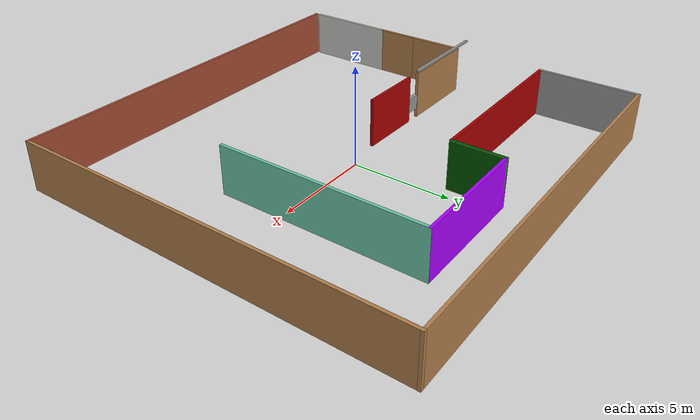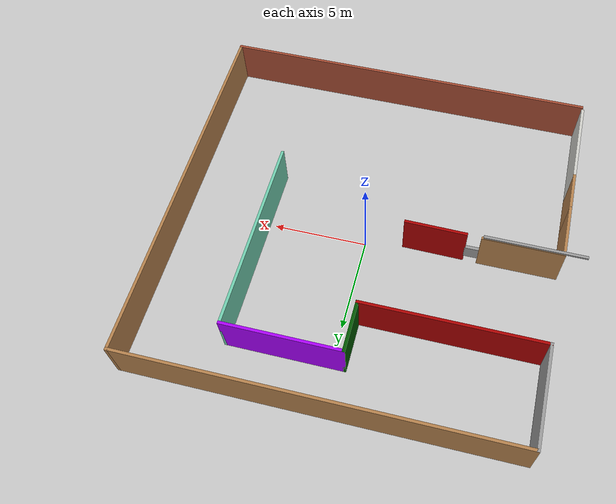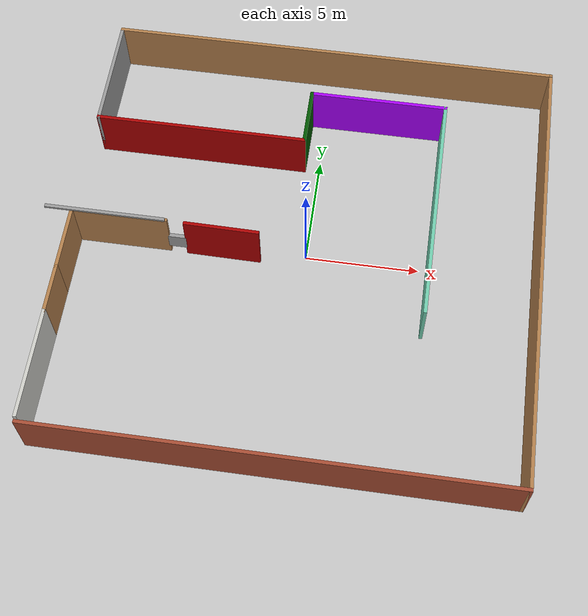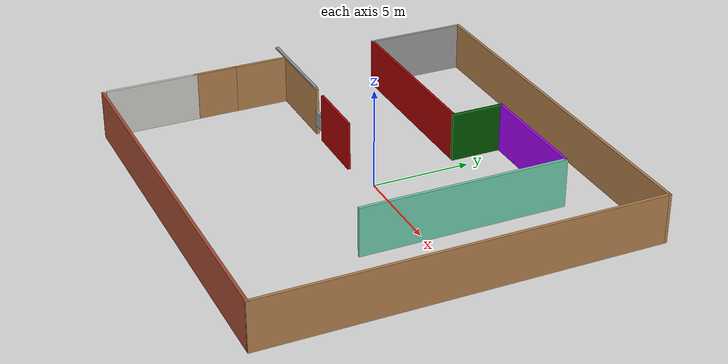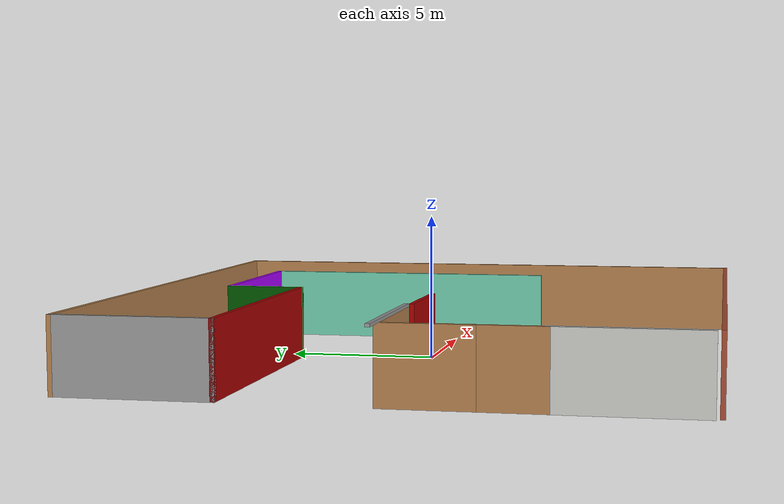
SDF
<?xml version='1.0'?>
<sdf version='1.6'>
  <model name='Building1'>
    <pose frame=''>-0.045869 -0.243118 0 0 -0 0</pose>
    <link name='Floor_0'>
      <collision name='Floor_0_Collision'>
        <geometry>
          <box>
            <size>5.25 0.15 0.1</size>
          </box>
        </geometry>
        <pose frame=''>0 0 0.05 0 -0 0</pose>
      </collision>
      <visual name='Floor_0_Visual'>
        <pose frame=''>0 0 0.05 0 -0 0</pose>
        <geometry>
          <box>
            <size>5.25 0.15 0.1</size>
          </box>
        </geometry>
        <material>
          <script>
            <uri>file://media/materials/scripts/gazebo.material</uri>
            <name>Gazebo/Grey</name>
          </script>
          <ambient>1 1 1 1</ambient>
        </material>
        <meta>
          <layer>1</layer>
        </meta>
      </visual>
      <pose frame=''>-8.62462 -0.152598 2.5 0 -0 0</pose>
    </link>
    <link name='Wall_16'>
      <collision name='Wall_16_Collision'>
        <geometry>
          <box>
            <size>4.25 0.15 2.5</size>
          </box>
        </geometry>
        <pose frame=''>0 0 1.25 0 -0 0</pose>
      </collision>
      <visual name='Wall_16_Visual'>
        <pose frame=''>0 0 1.25 0 -0 0</pose>
        <geometry>
          <box>
            <size>4.25 0.15 2.5</size>
          </box>
        </geometry>
        <material>
          <script>
            <uri>file://media/materials/scripts/gazebo.material</uri>
            <name>Gazebo/Wood</name>
          </script>
          <ambient>1 1 1 1</ambient>
        </material>
        <meta>
          <layer>0</layer>
        </meta>
      </visual>
      <pose frame=''>-8.03439 -0.122523 0 0 -0 3.14159</pose>
    </link>
    <link name='Wall_17'>
      <collision name='Wall_17_Collision'>
        <geometry>
          <box>
            <size>3 0.15 2.5</size>
          </box>
        </geometry>
        <pose frame=''>0 0 1.25 0 -0 0</pose>
      </collision>
      <visual name='Wall_17_Visual'>
        <pose frame=''>0 0 1.25 0 -0 0</pose>
        <geometry>
          <box>
            <size>3 0.15 2.5</size>
          </box>
        </geometry>
        <material>
          <script>
            <uri>file://media/materials/scripts/gazebo.material</uri>
            <name>Gazebo/Wood</name>
          </script>
          <ambient>1 1 1 1</ambient>
        </material>
        <meta>
          <layer>0</layer>
        </meta>
      </visual>
      <pose frame=''>-10.0844 -1.54752 0 0 0 -1.5708</pose>
    </link>
    <link name='Wall_19'>
      <collision name='Wall_19_Collision'>
        <geometry>
          <box>
            <size>2.25 0.15 2.5</size>
          </box>
        </geometry>
        <pose frame=''>0 0 1.25 0 -0 0</pose>
      </collision>
      <visual name='Wall_19_Visual'>
        <pose frame=''>0 0 1.25 0 -0 0</pose>
        <geometry>
          <box>
            <size>2.25 0.15 2.5</size>
          </box>
        </geometry>
        <material>
          <script>
            <uri>file://media/materials/scripts/gazebo.material</uri>
            <name>Gazebo/Wood</name>
          </script>
          <ambient>1 1 1 1</ambient>
        </material>
        <meta>
          <layer>0</layer>
        </meta>
      </visual>
      <pose frame=''>-10.0844 -4.02252 0 0 0 -1.5708</pose>
    </link>
    <link name='Wall_20'>
      <collision name='Wall_20_Collision'>
        <geometry>
          <box>
            <size>4.75 0.15 2.5</size>
          </box>
        </geometry>
        <pose frame=''>0 0 1.25 0 -0 0</pose>
      </collision>
      <visual name='Wall_20_Visual'>
        <pose frame=''>0 0 1.25 0 -0 0</pose>
        <geometry>
          <box>
            <size>4.75 0.15 2.5</size>
          </box>
        </geometry>
        <material>
          <script>
            <uri>file://media/materials/scripts/gazebo.material</uri>
            <name>Gazebo/CeilingTiled</name>
          </script>
          <ambient>1 1 1 1</ambient>
        </material>
        <meta>
          <layer>0</layer>
        </meta>
      </visual>
      <pose frame=''>-10.0844 -7.37252 0 0 0 -1.5708</pose>
    </link>
    <link name='Wall_23'>
      <collision name='Wall_23_Collision'>
        <geometry>
          <box>
            <size>20.25 0.15 2.5</size>
          </box>
        </geometry>
        <pose frame=''>0 0 1.25 0 -0 0</pose>
      </collision>
      <visual name='Wall_23_Visual'>
        <pose frame=''>0 0 1.25 0 -0 0</pose>
        <geometry>
          <box>
            <size>20.25 0.15 2.5</size>
          </box>
        </geometry>
        <material>
          <script>
            <uri>file://media/materials/scripts/gazebo.material</uri>
            <name>Gazebo/Bricks</name>
          </script>
          <ambient>1 1 1 1</ambient>
        </material>
        <meta>
          <layer>0</layer>
        </meta>
      </visual>
      <pose frame=''>0.034391 -9.925 0 0 -0 0</pose>
    </link>
    <link name='Wall_24'>
      <collision name='Wall_24_Collision'>
        <geometry>
          <box>
            <size>20 0.15 2.5</size>
          </box>
        </geometry>
        <pose frame=''>0 0 1.25 0 -0 0</pose>
      </collision>
      <visual name='Wall_24_Visual'>
        <pose frame=''>0 0 1.25 0 -0 0</pose>
        <geometry>
          <box>
            <size>20 0.15 2.5</size>
          </box>
        </geometry>
        <material>
          <script>
            <uri>file://media/materials/scripts/gazebo.material</uri>
            <name>Gazebo/Wood</name>
          </script>
          <ambient>1 1 1 1</ambient>
        </material>
        <meta>
          <layer>0</layer>
        </meta>
      </visual>
      <pose frame=''>10.0844 0 0 0 -0 1.5708</pose>
    </link>
    <link name='Wall_25'>
      <collision name='Wall_25_Collision'>
        <geometry>
          <box>
            <size>20.25 0.15 2.5</size>
          </box>
        </geometry>
        <pose frame=''>0 0 1.25 0 -0 0</pose>
      </collision>
      <visual name='Wall_25_Visual'>
        <pose frame=''>0 0 1.25 0 -0 0</pose>
        <geometry>
          <box>
            <size>20.25 0.15 2.5</size>
          </box>
        </geometry>
        <material>
          <script>
            <uri>file://media/materials/scripts/gazebo.material</uri>
            <name>Gazebo/Wood</name>
          </script>
          <ambient>1 1 1 1</ambient>
        </material>
        <meta>
          <layer>0</layer>
        </meta>
      </visual>
      <pose frame=''>0.034391 9.925 0 0 -0 3.14159</pose>
    </link>
    <link name='Wall_28'>
      <collision name='Wall_28_Collision'>
        <geometry>
          <box>
            <size>5.25 0.15 2.5</size>
          </box>
        </geometry>
        <pose frame=''>0 0 1.25 0 -0 0</pose>
      </collision>
      <visual name='Wall_28_Visual'>
        <pose frame=''>0 0 1.25 0 -0 0</pose>
        <geometry>
          <box>
            <size>5.25 0.15 2.5</size>
          </box>
        </geometry>
        <material>
          <script>
            <uri>file://media/materials/scripts/gazebo.material</uri>
            <name>Gazebo/Grey</name>
          </script>
          <ambient>1 1 1 1</ambient>
        </material>
        <meta>
          <layer>0</layer>
        </meta>
      </visual>
      <pose frame=''>-10.0156 7.375 0 0 0 -1.5708</pose>
    </link>
    <link name='Wall_29'>
      <collision name='Wall_29_Collision'>
        <geometry>
          <box>
            <size>9.5 0.15 2.5</size>
          </box>
        </geometry>
        <pose frame=''>0 0 1.25 0 -0 0</pose>
      </collision>
      <visual name='Wall_29_Visual'>
        <pose frame=''>0 0 1.25 0 -0 0</pose>
        <geometry>
          <box>
            <size>9.5 0.15 2.5</size>
          </box>
        </geometry>
        <material>
          <script>
            <uri>file://media/materials/scripts/gazebo.material</uri>
            <name>Gazebo/Grey</name>
          </script>
          <ambient>0.666667 0 0 1</ambient>
        </material>
        <meta>
          <layer>0</layer>
        </meta>
      </visual>
      <pose frame=''>-5.34061 4.825 0 0 -0 0</pose>
    </link>
    <link name='Wall_30'>
      <collision name='Wall_30_Collision'>
        <geometry>
          <box>
            <size>2.75 0.15 2.5</size>
          </box>
        </geometry>
        <pose frame=''>0 0 1.25 0 -0 0</pose>
      </collision>
      <visual name='Wall_30_Visual'>
        <pose frame=''>0 0 1.25 0 -0 0</pose>
        <geometry>
          <box>
            <size>2.75 0.15 2.5</size>
          </box>
        </geometry>
        <material>
          <script>
            <uri>file://media/materials/scripts/gazebo.material</uri>
            <name>Gazebo/Grey</name>
          </script>
          <ambient>0 0.333333 0 1</ambient>
        </material>
        <meta>
          <layer>0</layer>
        </meta>
      </visual>
      <pose frame=''>-0.665609 6.125 0 0 -0 1.5708</pose>
    </link>
    <link name='Wall_31'>
      <collision name='Wall_31_Collision'>
        <geometry>
          <box>
            <size>6.25 0.15 2.5</size>
          </box>
        </geometry>
        <pose frame=''>0 0 1.25 0 -0 0</pose>
      </collision>
      <visual name='Wall_31_Visual'>
        <pose frame=''>0 0 1.25 0 -0 0</pose>
        <geometry>
          <box>
            <size>6.25 0.15 2.5</size>
          </box>
        </geometry>
        <material>
          <script>
            <uri>file://media/materials/scripts/gazebo.material</uri>
            <name>Gazebo/Grey</name>
          </script>
          <ambient>0.666667 0 1 1</ambient>
        </material>
        <meta>
          <layer>0</layer>
        </meta>
      </visual>
      <pose frame=''>2.38439 7.425 0 0 -0 0</pose>
    </link>
    <link name='Wall_32'>
      <collision name='Wall_32_Collision'>
        <geometry>
          <box>
            <size>10.5 0.15 2.5</size>
          </box>
        </geometry>
        <pose frame=''>0 0 1.25 0 -0 0</pose>
      </collision>
      <visual name='Wall_32_Visual'>
        <pose frame=''>0 0 1.25 0 -0 0</pose>
        <geometry>
          <box>
            <size>10.5 0.15 2.5</size>
          </box>
        </geometry>
        <material>
          <script>
            <uri>file://media/materials/scripts/gazebo.material</uri>
            <name>Gazebo/Grey</name>
          </script>
          <ambient>0.435294 0.796078 0.67451 1</ambient>
        </material>
        <meta>
          <layer>0</layer>
        </meta>
      </visual>
      <pose frame=''>5.43439 2.25 0 0 0 -1.5708</pose>
    </link>
    <link name='Wall_9'>
      <collision name='Wall_9_Collision'>
        <geometry>
          <box>
            <size>3.29331 0.15 2.5</size>
          </box>
        </geometry>
        <pose frame=''>0 0 1.25 0 -0 0</pose>
      </collision>
      <visual name='Wall_9_Visual'>
        <pose frame=''>0 0 1.25 0 -0 0</pose>
        <geometry>
          <box>
            <size>3.29331 0.15 2.5</size>
          </box>
        </geometry>
        <material>
          <script>
            <uri>file://media/materials/scripts/gazebo.material</uri>
            <name>Gazebo/Grey</name>
          </script>
          <ambient>0.666667 0 0 1</ambient>
        </material>
        <meta>
          <layer>0</layer>
        </meta>
      </visual>
      <pose frame=''>-3.55569 -0.16974 0 0 0 -0.010907</pose>
    </link>
    <link name='Window_1'>
      <collision name='Window_1_Collision'>
        <geometry>
          <box>
            <size>0.8 0.17 0.8</size>
          </box>
        </geometry>
        <pose frame=''>0 0 0.4 0 -0 0</pose>
      </collision>
      <visual name='Window_1_Visual'>
        <pose frame=''>0 0 0.4 0 -0 0</pose>
        <geometry>
          <box>
            <size>0.8 0.17 0.8</size>
          </box>
        </geometry>
        <material>
          <script>
            <uri>file://media/materials/scripts/gazebo.material</uri>
            <name>Gazebo/Grey</name>
          </script>
        </material>
      </visual>
      <pose frame=''>-5.56037 -0.143616 0.5 0 -0 0</pose>
    </link>
    <static>1</static>
  </model>
</sdf>
